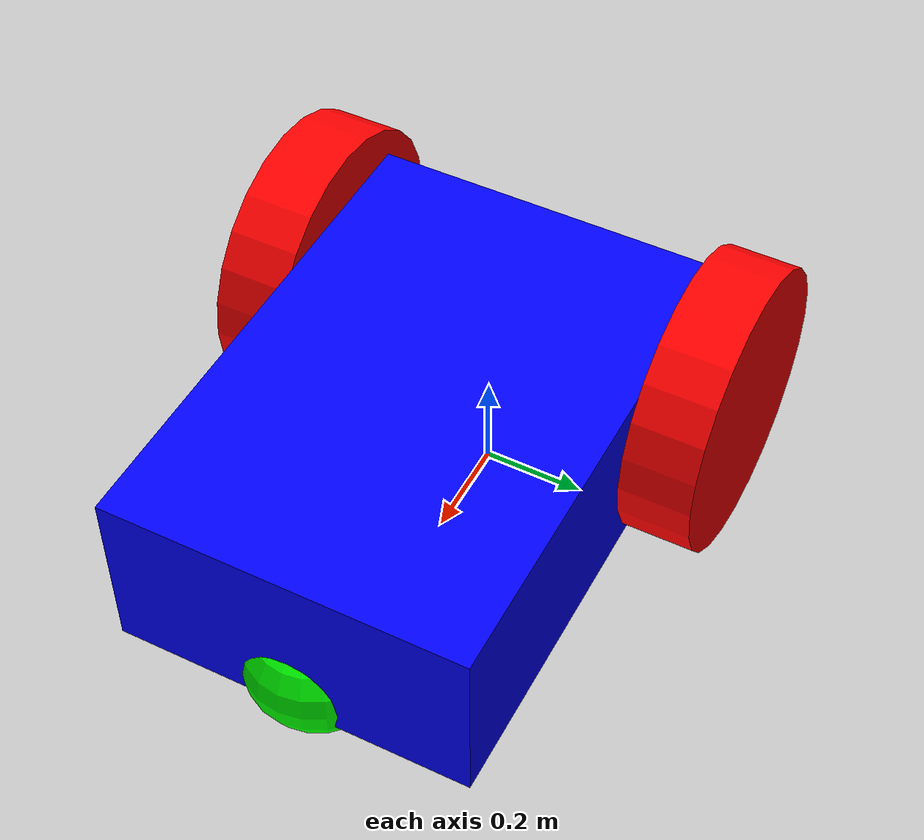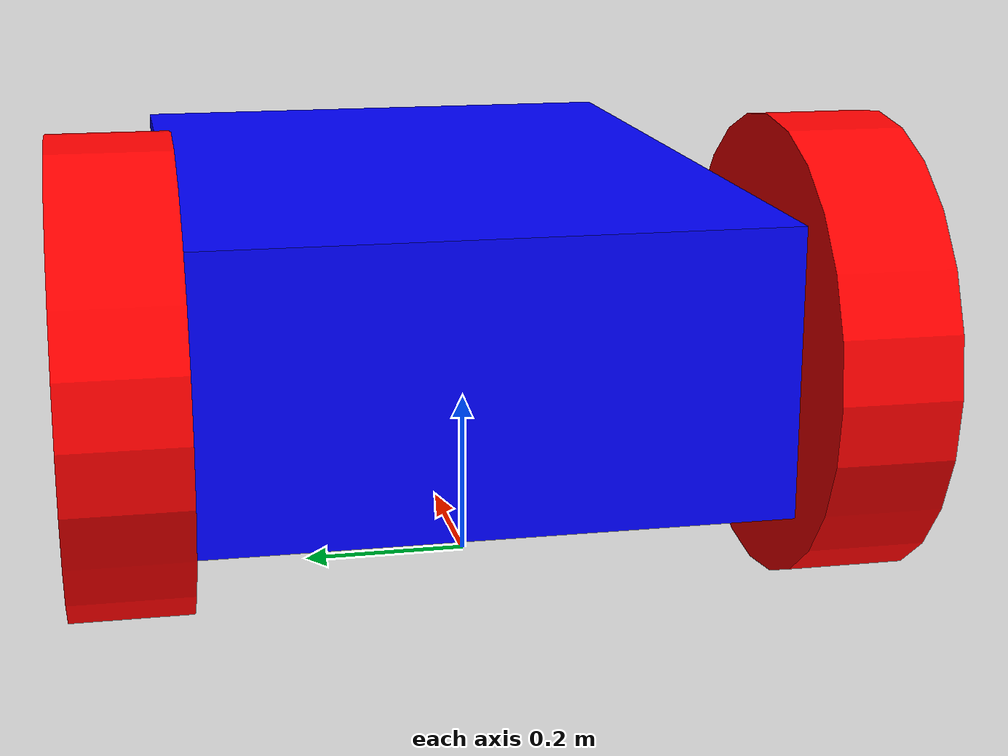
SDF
<?xml version="1.0" ?>
<sdf version="1.8">
    <model name='vehicle_blue' canonical_link='chassis'>

        <!-- ===================== CHASSIS ===================== -->
        <link name='chassis'>
            <!-- Adjusted because the body length was reduced -->
            <pose relative_to='__model__'>0.25 0 0.28 0 0 0</pose>

            <!-- Inertial properties -->
            <inertial>
                <mass>1.14395</mass>
                <inertia>
                    <ixx>0.095329</ixx>
                    <ixy>0</ixy>
                    <ixz>0</ixz>
                    <iyy>0.381317</iyy>
                    <iyz>0</iyz>
                    <izz>0.476646</izz>
                </inertia>
            </inertial>

            <!-- Visual shape of chassis -->
            <visual name='visual'>
                <geometry>
                    <!-- Shortened body: 1.0 x 0.7 x 0.35 -->
                    <box>
                        <size>1.0 0.7 0.35</size>
                    </box>
                </geometry>
                <material>
                    <ambient>0.0 0.0 1.0 1</ambient>
                    <diffuse>0.0 0.0 1.0 1</diffuse>
                    <specular>0.0 0.0 1.0 1</specular>
                </material>
            </visual>

            <!-- Collision shape of chassis -->
            <collision name='collision'>
                <geometry>
                    <box>
                        <size>1.0 0.7 0.35</size>
                    </box>
                </geometry>
            </collision>
        </link>

        <!-- ===================== LEFT WHEEL ===================== -->
        <link name='left_wheel'>
            <!-- Scaled 0.7 and position adjusted -->
            <pose relative_to="chassis">-0.35 0.42 0 -1.5707 0 0</pose>

            <!-- Inertial properties -->
            <inertial>
                <mass>1</mass>
                <inertia>
                    <ixx>0.043333</ixx>
                    <ixy>0</ixy>
                    <ixz>0</ixz>
                    <iyy>0.043333</iyy>
                    <iyz>0</iyz>
                    <izz>0.08</izz>
                </inertia>
            </inertial>

            <!-- Visual shape -->
            <visual name='visual'>
                <geometry>
                    <cylinder>
                        <radius>0.28</radius>
                        <length>0.14</length>
                    </cylinder>
                </geometry>
                <material>
                    <ambient>1.0 0.0 0.0 1</ambient>
                    <diffuse>1.0 0.0 0.0 1</diffuse>
                    <specular>1.0 0.0 0.0 1</specular>
                </material>
            </visual>

            <!-- Collision shape -->
            <collision name='collision'>
                <geometry>
                    <cylinder>
                        <radius>0.28</radius>
                        <length>0.14</length>
                    </cylinder>
                </geometry>
            </collision>
        </link>

        <!-- ===================== RIGHT WHEEL ===================== -->
        <link name='right_wheel'>
            <pose relative_to="chassis">-0.35 -0.42 0 -1.5707 0 0</pose>

            <inertial>
                <mass>1</mass>
                <inertia>
                    <ixx>0.043333</ixx>
                    <ixy>0</ixy>
                    <ixz>0</ixz>
                    <iyy>0.043333</iyy>
                    <iyz>0</iyz>
                    <izz>0.08</izz>
                </inertia>
            </inertial>

            <visual name='visual'>
                <geometry>
                    <cylinder>
                        <radius>0.28</radius>
                        <length>0.14</length>
                    </cylinder>
                </geometry>
                <material>
                    <ambient>1.0 0.0 0.0 1</ambient>
                    <diffuse>1.0 0.0 0.0 1</diffuse>
                    <specular>1.0 0.0 0.0 1</specular>
                </material>
            </visual>

            <collision name='collision'>
                <geometry>
                    <cylinder>
                        <radius>0.28</radius>
                        <length>0.14</length>
                    </cylinder>
                </geometry>
            </collision>
        </link>

        <!-- ===================== CASTER FRAME ===================== -->
        <frame name="caster_frame" attached_to='chassis'>
            <!-- Moved slightly backward due to shortened body -->
            <pose>0.4 0 -0.14 0 0 0</pose>
        </frame>

        <!-- ===================== CASTER WHEEL ===================== -->
        <link name='caster'>
            <pose relative_to='caster_frame'/>

            <inertial>
                <mass>1</mass>
                <inertia>
                    <ixx>0.016</ixx>
                    <ixy>0</ixy>
                    <ixz>0</ixz>
                    <iyy>0.016</iyy>
                    <iyz>0</iyz>
                    <izz>0.016</izz>
                </inertia>
            </inertial>

            <visual name='visual'>
                <geometry>
                    <sphere>
                        <radius>0.14</radius>
                    </sphere>
                </geometry>
                <material>
                    <ambient>0.0 1 0.0 1</ambient>
                    <diffuse>0.0 1 0.0 1</diffuse>
                    <specular>0.0 1 0.0 1</specular>
                </material>
            </visual>

            <collision name='collision'>
                <geometry>
                    <sphere>
                        <radius>0.14</radius>
                    </sphere>
                </geometry>
            </collision>
        </link>

        <!-- ===================== JOINTS ===================== -->

        <!-- Left wheel joint -->
        <joint name='left_wheel_joint' type='revolute'>
            <pose relative_to='left_wheel'/>
            <parent>chassis</parent>
            <child>left_wheel</child>
            <axis>
                <xyz expressed_in='__model__'>0 1 0</xyz>
                <limit>
                    <lower>-1.79769e+308</lower>
                    <upper>1.79769e+308</upper>
                </limit>
            </axis>
        </joint>

        <!-- Right wheel joint -->
        <joint name='right_wheel_joint' type='revolute'>
            <pose relative_to='right_wheel'/>
            <parent>chassis</parent>
            <child>right_wheel</child>
            <axis>
                <xyz expressed_in='__model__'>0 1 0</xyz>
                <limit>
                    <lower>-1.79769e+308</lower>
                    <upper>1.79769e+308</upper>
                </limit>
            </axis>
        </joint>

        <!-- Caster joint (ball joint) -->
        <joint name='caster_wheel' type='ball'>
            <parent>chassis</parent>
            <child>caster</child>
        </joint>

        <!-- ===================== DIFF DRIVE PLUGIN ===================== -->
        <plugin
            filename="libignition-gazebo-diff-drive-system.so"
            name="ignition::gazebo::systems::DiffDrive">
            <left_joint>left_wheel_joint</left_joint>
            <right_joint>right_wheel_joint</right_joint>

            <!-- Updated according to 0.7x scale -->
            <wheel_separation>0.84</wheel_separation>
            <wheel_radius>0.28</wheel_radius>

            <odom_publish_frequency>1</odom_publish_frequency>
            <topic>cmd_vel2</topic>
        </plugin>

    </model>
</sdf>
